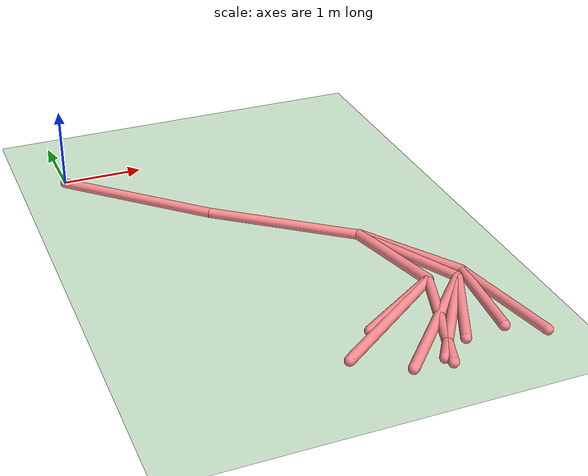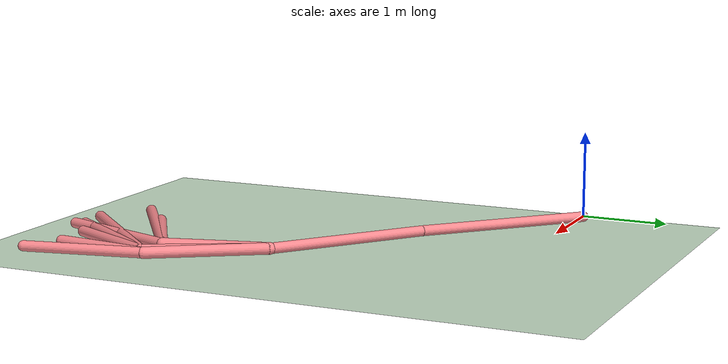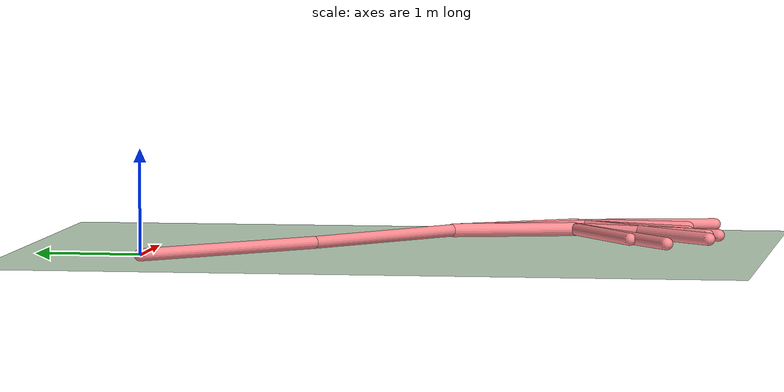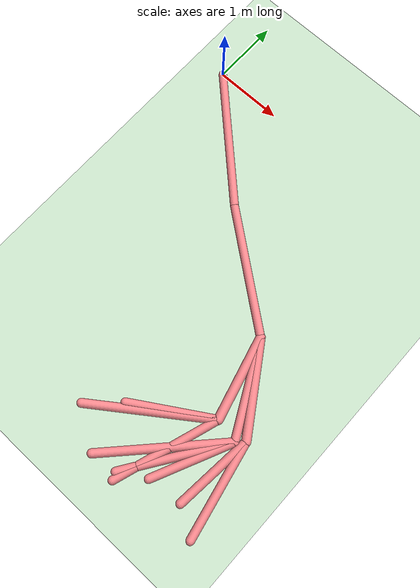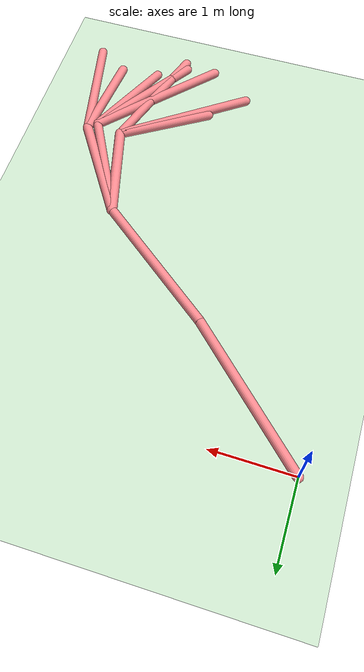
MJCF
<mujoco model="swimmer">
  <compiler angle="degree" coordinate="global" inertiafromgeom="true"/>
  <option collision="predefined" density="4000" integrator="RK4" timestep="0.01" viscosity="0.1"/>
  <default>
    <geom conaffinity="1" condim="1" contype="1" margin="0.001" rgba=".98 .54 .56 1."/>
    <joint armature="0.1"/>
  </default>
  <visual>
    <headlight ambient=".1 .1 .1" diffuse=".6 .6 .6" specular="0.3 0.3 0.3"/>
    <map znear=".01"/>
    <quality shadowsize="16384"/>
  </visual>
  <worldbody>
    <light cutoff="100" diffuse="1 1 1" dir="-1 0 -1.3" directional="true" exponent="1" pos="1 0 1.3" specular=".1 .1 .1" castshadow="true"/>
    <geom conaffinity="1" condim="3" name="floor" pos="0 0 -0.1" rgba="0.8 0.9 0.8 1" size="40 40 0.1" type="plane" material="grid_new"/>
    <body name="0" pos="0 0 0">
      <camera name="track" mode="trackcom" pos="0 -3 3" xyaxes="1 0 0 0 1 1"/>
      <joint axis="1 0 0" name="slider1" pos="0 0 0" type="slide"/>
      <joint axis="0 1 0" name="slider2" pos="0 0 0" type="slide"/>
      <joint axis="0 0 1" name="0_joint" pos="0 0 0" type="hinge"/>
      <geom density="1000" fromto="-0.00005 0.000048 0 1.497218 -1.41965 0" size="0.06" type="capsule"/>
      <body name="1" pos="1.497218 -1.41965 0">
        <joint axis="0 0 1" limited="true" name="1_joint" pos="1.497218 -1.41965 0" range="-100 100" type="hinge"/>
        <geom density="1000" fromto="1.497208 -1.419643 0 2.99547 -2.575863 0" size="0.06" type="capsule"/>
        <body name="11" pos="2.99547 -2.575863 0">
          <joint axis="0 0 1" limited="true" name="11_joint" pos="2.99547 -2.575863 0" range="-100 100" type="hinge"/>
          <geom density="1000" fromto="2.995455 -2.575804 0 3.299209 -3.752379 0" size="0.067253" type="capsule"/>
          <body name="111" pos="3.299209 -3.752379 0">
            <joint axis="0 0 1" limited="true" name="111_joint" pos="3.299209 -3.752379 0" range="-100 100" type="hinge"/>
            <geom density="1000" fromto="3.299295 -3.752318 0 1.836823 -4.795965 0" size="0.061479" type="capsule"/>
          </body>
          <body name="211" pos="3.299209 -3.752379 0">
            <joint axis="0 0 1" limited="true" name="211_joint" pos="3.299209 -3.752379 0" range="-100 100" type="hinge"/>
            <geom density="1000" fromto="3.299331 -3.752302 0 2.254557 -4.403527 0" size="0.06053" type="capsule"/>
          </body>
          <body name="311" pos="3.299209 -3.752379 0">
            <joint axis="0 0 1" limited="true" name="311_joint" pos="3.299209 -3.752379 0" range="-100 100" type="hinge"/>
            <geom density="1000" fromto="3.299246 -3.752266 0 2.812494 -5.21498 0" size="0.060042" type="capsule"/>
          </body>
        </body>
        <body name="21" pos="2.99547 -2.575863 0">
          <joint axis="0 0 1" limited="true" name="21_joint" pos="2.99547 -2.575863 0" range="-100 100" type="hinge"/>
          <geom density="1000" fromto="2.995468 -2.575858 0 3.643302 -3.820968 0" size="0.060002" type="capsule"/>
          <body name="121" pos="3.643302 -3.820968 0">
            <joint axis="0 0 1" limited="true" name="121_joint" pos="3.643302 -3.820968 0" range="-100 100" type="hinge"/>
            <geom density="1000" fromto="3.643402 -3.820861 0 2.384671 -5.156382 0" size="0.062032" type="capsule"/>
          </body>
          <body name="221" pos="3.643302 -3.820968 0">
            <joint axis="0 0 1" limited="true" name="221_joint" pos="3.643302 -3.820968 0" range="-100 100" type="hinge"/>
            <geom density="1000" fromto="3.643314 -3.820941 0 3.139748 -4.891768 0" size="0.060437" type="capsule"/>
          </body>
          <body name="321" pos="3.643302 -3.820968 0">
            <joint axis="0 0 1" limited="true" name="321_joint" pos="3.643302 -3.820968 0" range="-100 100" type="hinge"/>
            <geom density="1000" fromto="3.643309 -3.820957 0 2.767385 -5.11263 0" size="0.060073" type="capsule"/>
          </body>
        </body>
        <body name="31" pos="2.99547 -2.575863 0">
          <joint axis="0 0 1" limited="true" name="31_joint" pos="2.99547 -2.575863 0" range="-100 100" type="hinge"/>
          <geom density="1000" fromto="2.995468 -2.575859 0 3.750724 -3.721551 0" size="0.065157" type="capsule"/>
          <body name="131" pos="3.750724 -3.721551 0">
            <joint axis="0 0 1" limited="true" name="131_joint" pos="3.750724 -3.721551 0" range="-100 100" type="hinge"/>
            <geom density="1000" fromto="3.750721 -3.721537 0 4.026336 -5.07715 0" size="0.06014" type="capsule"/>
          </body>
          <body name="231" pos="3.750724 -3.721551 0">
            <joint axis="0 0 1" limited="true" name="231_joint" pos="3.750724 -3.721551 0" range="-100 100" type="hinge"/>
            <geom density="1000" fromto="3.750734 -3.721451 0 3.638271 -4.83995 0" size="0.061988" type="capsule"/>
          </body>
        </body>
      </body>
    </body>
  </worldbody>
  <actuator>
    <motor ctrllimited="true" ctrlrange="-1 1" gear="299.942456" joint="1_joint" name="1_joint"/>
    <motor ctrllimited="true" ctrlrange="-1 1" gear="260.260724" joint="11_joint" name="11_joint"/>
    <motor ctrllimited="true" ctrlrange="-1 1" gear="253.731312" joint="21_joint" name="21_joint"/>
    <motor ctrllimited="true" ctrlrange="-1 1" gear="190.222271" joint="111_joint" name="111_joint"/>
    <motor ctrllimited="true" ctrlrange="-1 1" gear="288.831585" joint="31_joint" name="31_joint"/>
    <motor ctrllimited="true" ctrlrange="-1 1" gear="276.351452" joint="211_joint" name="211_joint"/>
    <motor ctrllimited="true" ctrlrange="-1 1" gear="201.209745" joint="121_joint" name="121_joint"/>
    <motor ctrllimited="true" ctrlrange="-1 1" gear="251.167829" joint="311_joint" name="311_joint"/>
    <motor ctrllimited="true" ctrlrange="-1 1" gear="226.442696" joint="221_joint" name="221_joint"/>
    <motor ctrllimited="true" ctrlrange="-1 1" gear="258.6818" joint="131_joint" name="131_joint"/>
    <motor ctrllimited="true" ctrlrange="-1 1" gear="199.315004" joint="321_joint" name="321_joint"/>
    <motor ctrllimited="true" ctrlrange="-1 1" gear="174.456509" joint="231_joint" name="231_joint"/>
  </actuator>
  <asset>
    <texture type="skybox" builtin="gradient" rgb1=".4 .5 .6" rgb2="0 0 0" width="100" height="100"/>
    <texture builtin="flat" height="1278" mark="cross" markrgb="1 1 1" name="texgeom" random="0.01" rgb1="0.8 0.6 0.4" rgb2="0.8 0.6 0.4" type="cube" width="127"/>
    <texture builtin="checker" height="100" name="texplane" rgb1="0 0 0" rgb2="0.8 0.8 0.8" type="2d" width="100"/>
    <material name="MatPlane" reflectance="0.5" shininess="1" specular="1" texrepeat="60 60" texture="texplane"/>
    <material name="geom" texture="texgeom" texuniform="true"/>
    <texture name="grid_new" type="2d" builtin="checker" rgb1=".1 .3 .2" rgb2=".2 .4 .3" width="1000" height="1000" mark="none" markrgb=".8 .6 .4"/>
    <material name="grid_new" texture="grid_new" texrepeat="0.2 0.2" texuniform="true" reflectance=".2"/>
  </asset>
</mujoco>
